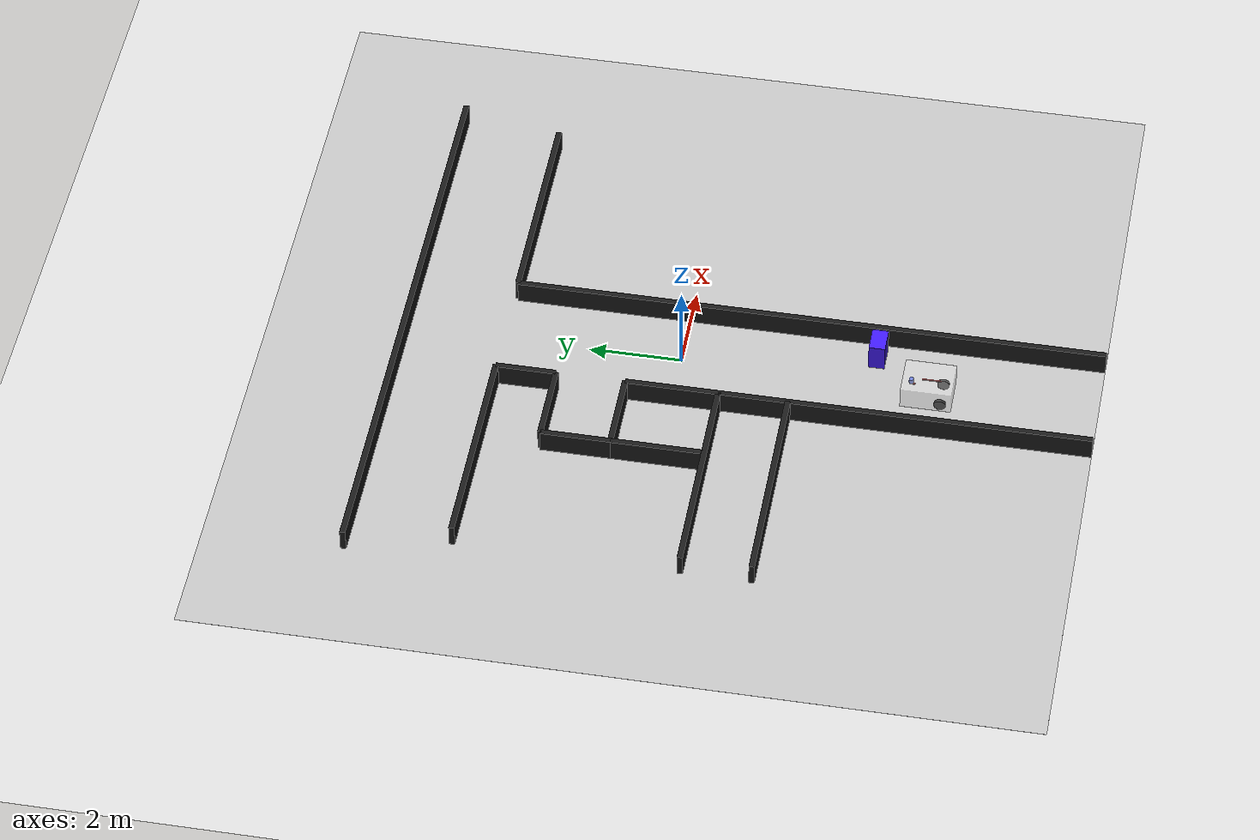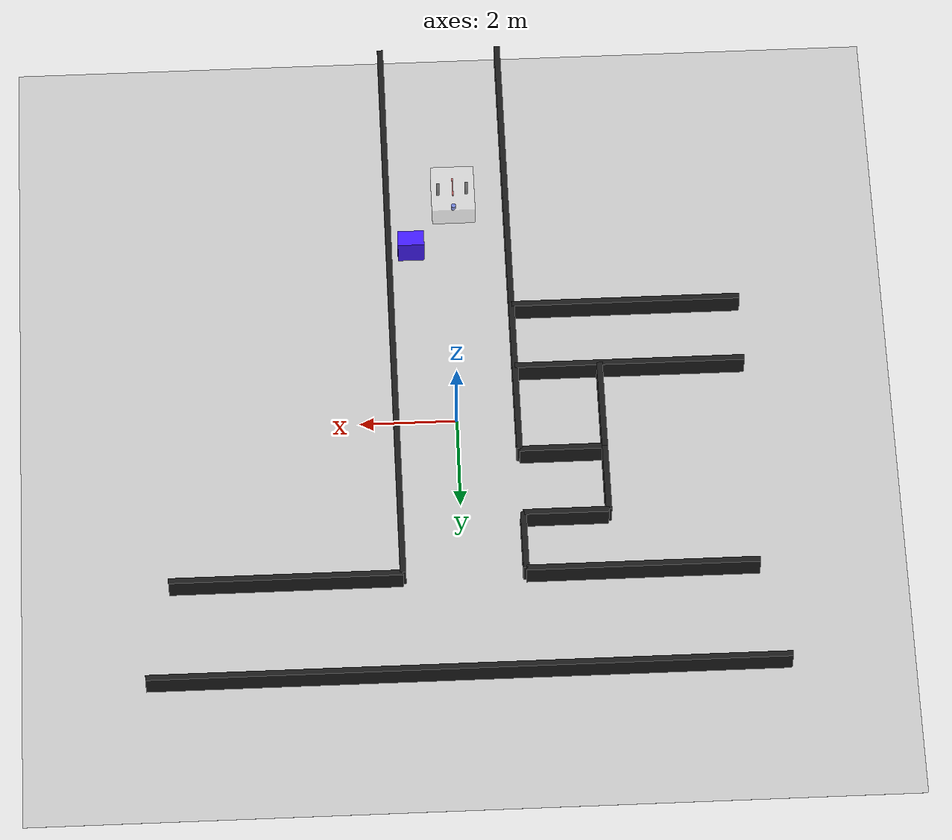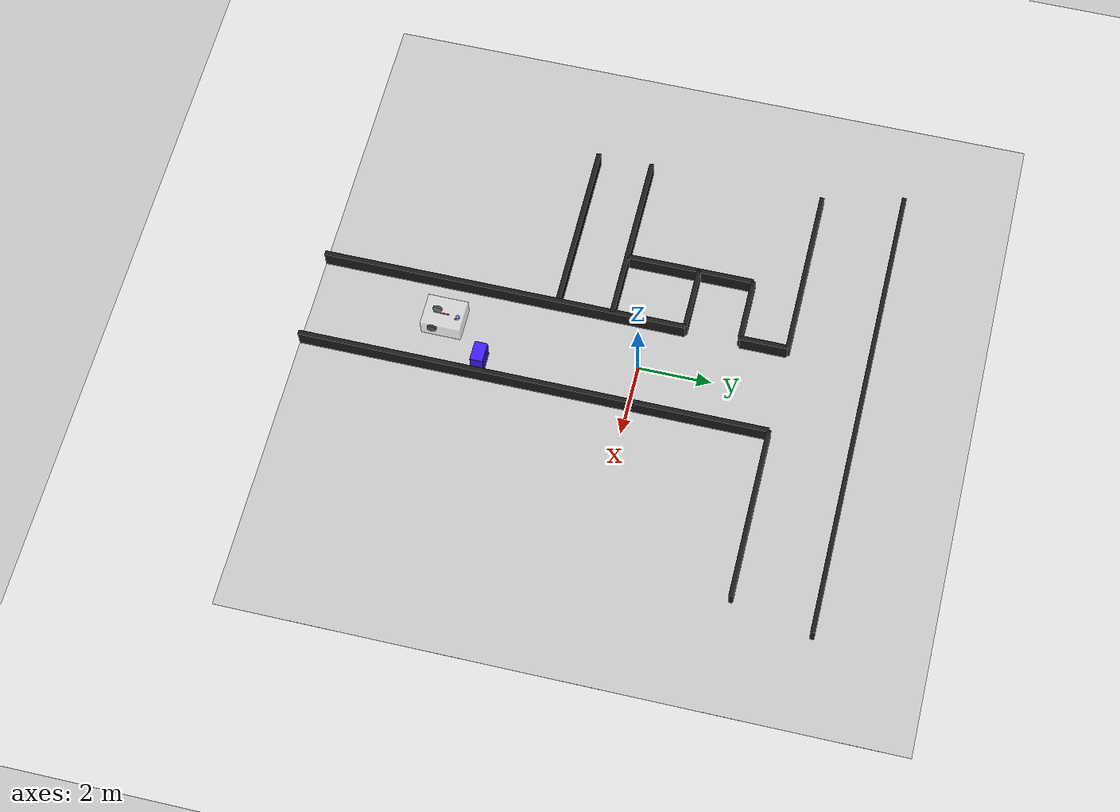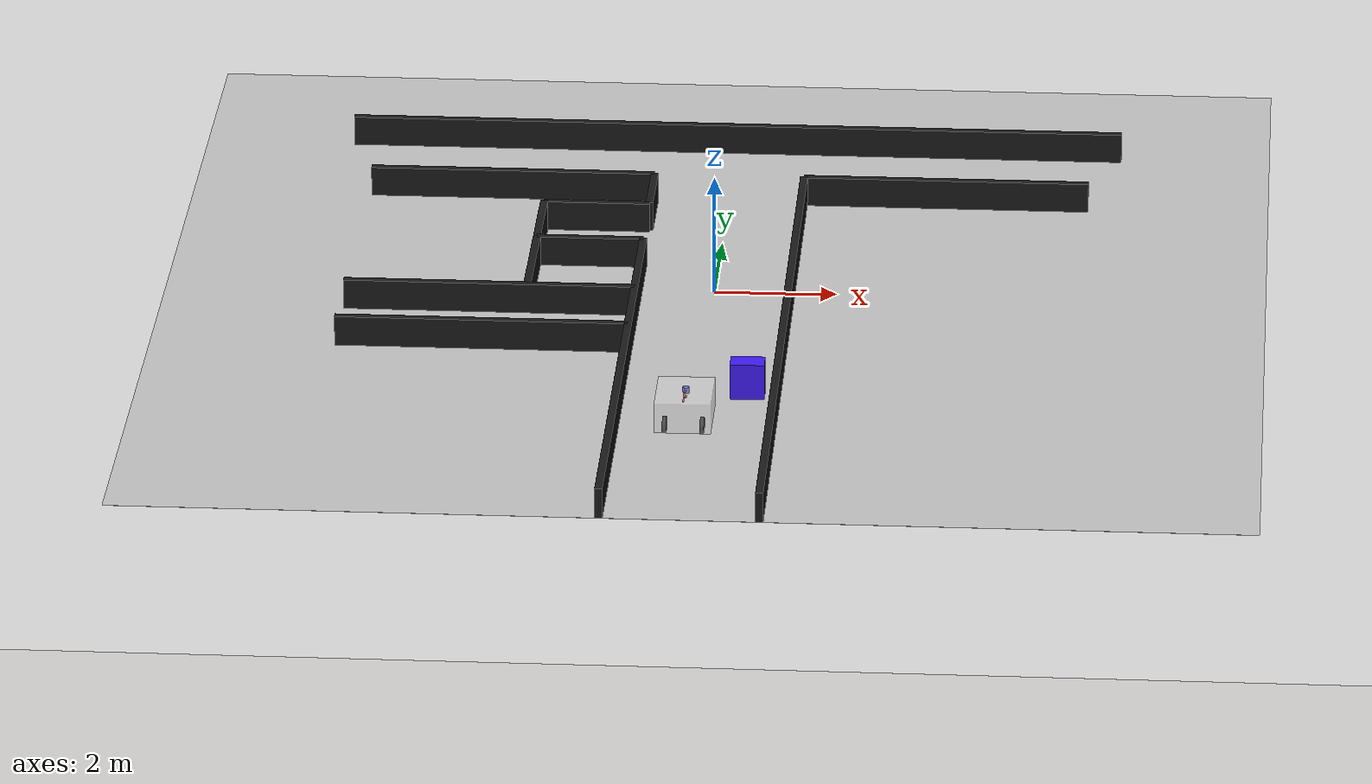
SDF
<?xml version="1.0" ?>
<sdf version="1.7">
  <world name="office_corridor_sketch">
    <plugin
      filename="libignition-gazebo-physics-system.so"
      name="ignition::gazebo::systems::Physics"/>
    <plugin
      filename="libignition-gazebo-user-commands-system.so"
      name="ignition::gazebo::systems::UserCommands"/>
    <plugin
      filename="libignition-gazebo-scene-broadcaster-system.so"
      name="ignition::gazebo::systems::SceneBroadcaster"/>
    <plugin
      filename="libignition-gazebo-sensors-system.so"
      name="ignition::gazebo::systems::Sensors">
      <render_engine>ogre2</render_engine>
    </plugin>

    <gravity>0 0 -9.81</gravity>
    <magnetic_field>6e-06 2.3e-05 -4.2e-05</magnetic_field>
    <atmosphere type="adiabatic"/>

    <light name="sun" type="directional">
      <cast_shadows>true</cast_shadows>
      <pose>0 0 10 0 0 0</pose>
      <diffuse>0.8 0.8 0.8 1</diffuse>
      <specular>0.2 0.2 0.2 1</specular>
      <attenuation>
        <range>1000</range>
        <constant>0.9</constant>
        <linear>0.01</linear>
        <quadratic>0.001</quadratic>
      </attenuation>
      <direction>-0.5 0.1 -0.9</direction>
    </light>

    <model name="ground_plane">
      <static>true</static>
      <link name="link">
        <collision name="collision">
          <geometry>
            <plane>
              <normal>0 0 1</normal>
              <size>100 100</size>
            </plane>
          </geometry>
        </collision>
        <visual name="visual">
          <geometry>
            <plane>
              <normal>0 0 1</normal>
              <size>100 100</size>
            </plane>
          </geometry>
          <material>
            <ambient>0.85 0.85 0.85 1</ambient>
            <diffuse>0.85 0.85 0.85 1</diffuse>
          </material>
        </visual>
      </link>
    </model>

    <!-- Light-gray floor patch so the scene resembles your sketch background. -->
    <model name="floor_patch">
      <static>true</static>
      <pose>0 0 0.001 0 0 0</pose>
      <link name="link">
        <collision name="collision">
          <geometry>
            <box>
              <size>18 18 0.002</size>
            </box>
          </geometry>
        </collision>
        <visual name="visual">
          <geometry>
            <box>
              <size>18 18 0.002</size>
            </box>
          </geometry>
          <material>
            <ambient>0.75 0.75 0.75 1</ambient>
            <diffuse>0.75 0.75 0.75 1</diffuse>
          </material>
        </visual>
      </link>
    </model>

    <!-- Wall helper style: thickness=0.12m, height=0.5m. -->

    <model name="wall_top_border">
      <static>true</static>
      <pose>0 6.0 0.25 0 0 0</pose>
      <link name="link">
        <collision name="collision"><geometry><box><size>13.0 0.12 0.5</size></box></geometry></collision>
        <visual name="visual"><geometry><box><size>13.0 0.12 0.5</size></box></geometry><material><ambient>0.1 0.1 0.1 1</ambient><diffuse>0.1 0.1 0.1 1</diffuse></material></visual>
      </link>
    </model>

    <model name="wall_upper_left">
      <static>true</static>
      <pose>-3.625 3.8 0.25 0 0 0</pose>
      <link name="link">
        <collision name="collision"><geometry><box><size>4.75 0.12 0.5</size></box></geometry></collision>
        <visual name="visual"><geometry><box><size>4.75 0.12 0.5</size></box></geometry><material><ambient>0.1 0.1 0.1 1</ambient><diffuse>0.1 0.1 0.1 1</diffuse></material></visual>
      </link>
    </model>

    <model name="wall_upper_right">
      <static>true</static>
      <pose>3.625 3.8 0.25 0 0 0</pose>
      <link name="link">
        <collision name="collision"><geometry><box><size>4.75 0.12 0.5</size></box></geometry></collision>
        <visual name="visual"><geometry><box><size>4.75 0.12 0.5</size></box></geometry><material><ambient>0.1 0.1 0.1 1</ambient><diffuse>0.1 0.1 0.1 1</diffuse></material></visual>
      </link>
    </model>

    <model name="wall_main_right">
      <static>true</static>
      <pose>1.25 -2.6 0.25 0 0 0</pose>
      <link name="link">
        <collision name="collision"><geometry><box><size>0.12 12.8 0.5</size></box></geometry></collision>
        <visual name="visual"><geometry><box><size>0.12 12.8 0.5</size></box></geometry><material><ambient>0.1 0.1 0.1 1</ambient><diffuse>0.1 0.1 0.1 1</diffuse></material></visual>
      </link>
    </model>

    <model name="wall_main_left_bottom">
      <static>true</static>
      <pose>-1.25 -4.0 0.25 0 0 0</pose>
      <link name="link">
        <collision name="collision"><geometry><box><size>0.12 10.0 0.5</size></box></geometry></collision>
        <visual name="visual"><geometry><box><size>0.12 10.0 0.5</size></box></geometry><material><ambient>0.1 0.1 0.1 1</ambient><diffuse>0.1 0.1 0.1 1</diffuse></material></visual>
      </link>
    </model>

    <model name="wall_left_step_h1">
      <static>true</static>
      <pose>-2.125 1.0 0.25 0 0 0</pose>
      <link name="link">
        <collision name="collision"><geometry><box><size>1.75 0.12 0.5</size></box></geometry></collision>
        <visual name="visual"><geometry><box><size>1.75 0.12 0.5</size></box></geometry><material><ambient>0.1 0.1 0.1 1</ambient><diffuse>0.1 0.1 0.1 1</diffuse></material></visual>
      </link>
    </model>

    <model name="wall_left_step_v1">
      <static>true</static>
      <pose>-3.0 1.75 0.25 0 0 0</pose>
      <link name="link">
        <collision name="collision"><geometry><box><size>0.12 1.5 0.5</size></box></geometry></collision>
        <visual name="visual"><geometry><box><size>0.12 1.5 0.5</size></box></geometry><material><ambient>0.1 0.1 0.1 1</ambient><diffuse>0.1 0.1 0.1 1</diffuse></material></visual>
      </link>
    </model>

    <model name="wall_left_step_v2">
      <static>true</static>
      <pose>-3.0 0.0 0.25 0 0 0</pose>
      <link name="link">
        <collision name="collision"><geometry><box><size>0.12 2.0 0.5</size></box></geometry></collision>
        <visual name="visual"><geometry><box><size>0.12 2.0 0.5</size></box></geometry><material><ambient>0.1 0.1 0.1 1</ambient><diffuse>0.1 0.1 0.1 1</diffuse></material></visual>
      </link>
    </model>

    <model name="wall_left_step_h2">
      <static>true</static>
      <pose>-2.125 2.5 0.25 0 0 0</pose>
      <link name="link">
        <collision name="collision"><geometry><box><size>1.75 0.12 0.5</size></box></geometry></collision>
        <visual name="visual"><geometry><box><size>1.75 0.12 0.5</size></box></geometry><material><ambient>0.1 0.1 0.1 1</ambient><diffuse>0.1 0.1 0.1 1</diffuse></material></visual>
      </link>
    </model>

    <model name="wall_main_left_top">
      <static>true</static>
      <pose>-1.25 3.15 0.25 0 0 0</pose>
      <link name="link">
        <collision name="collision"><geometry><box><size>0.12 1.3 0.5</size></box></geometry></collision>
        <visual name="visual"><geometry><box><size>0.12 1.3 0.5</size></box></geometry><material><ambient>0.1 0.1 0.1 1</ambient><diffuse>0.1 0.1 0.1 1</diffuse></material></visual>
      </link>
    </model>

    <model name="wall_left_mid_horizontal">
      <static>true</static>
      <pose>-3.625 -1.0 0.25 0 0 0</pose>
      <link name="link">
        <collision name="collision"><geometry><box><size>4.75 0.12 0.5</size></box></geometry></collision>
        <visual name="visual"><geometry><box><size>4.75 0.12 0.5</size></box></geometry><material><ambient>0.1 0.1 0.1 1</ambient><diffuse>0.1 0.1 0.1 1</diffuse></material></visual>
      </link>
    </model>

    <model name="wall_left_low_horizontal">
      <static>true</static>
      <pose>-3.625 -2.5 0.25 0 0 0</pose>
      <link name="link">
        <collision name="collision"><geometry><box><size>4.75 0.12 0.5</size></box></geometry></collision>
        <visual name="visual"><geometry><box><size>4.75 0.12 0.5</size></box></geometry><material><ambient>0.1 0.1 0.1 1</ambient><diffuse>0.1 0.1 0.1 1</diffuse></material></visual>
      </link>
    </model>

    <!-- Blue obstacle from your sketch. -->
    <model name="obstacle_blue_box">
      <static>true</static>
      <pose>0.78 -4.15 0.3 0 0 0</pose>
      <link name="link">
        <collision name="collision">
          <geometry>
            <box>
              <size>0.55 0.35 0.6</size>
            </box>
          </geometry>
        </collision>
        <visual name="visual">
          <geometry>
            <box>
              <size>0.55 0.35 0.6</size>
            </box>
          </geometry>
          <material>
            <ambient>0.25 0.1 0.95 1</ambient>
            <diffuse>0.25 0.1 0.95 1</diffuse>
          </material>
        </visual>
      </link>
    </model>

    <!-- Start marker near the corridor bottom center, facing +Y. -->

    <include>
      <name>finav_vehicle</name>
      <pose>-0.15 -5.65 0 0 0 1.5707963</pose>
      <uri>model://whillcar</uri>
    </include>

  </world>
</sdf>

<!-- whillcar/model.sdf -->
<sdf version="1.7">
  <model name="whillcar">
    <self_collide>false</self_collide>

    <link name="base_link">
      <gravity>false</gravity>
      <pose>0.295 0 0.25 0 0 0</pose>
      <inertial>
        <pose>0 0 0 0 0 0</pose>
        <mass>40.0</mass>
        <inertia>
          <ixx>3.5333333333</ixx>
          <ixy>0.0</ixy>
          <ixz>0.0</ixz>
          <iyy>4.7936666667</iyy>
          <iyz>0.0</iyz>
          <izz>6.6603333333</izz>
        </inertia>
      </inertial>
      <collision name="base_collision">
        <geometry>
          <box>
            <size>1.09 0.90 0.5</size>
          </box>
        </geometry>
      </collision>
      <visual name="base_visual">
        <pose>0 0 0.09 0 0 0</pose>
        <geometry>
          <box>
            <size>1.09 0.90 0.5</size>
          </box>
        </geometry>
        <material>
          <ambient>0.9 0.9 0.9 0.35</ambient>
          <diffuse>0.9 0.9 0.9 0.35</diffuse>
        </material>
      </visual>
    </link>

    <link name="left_wheel_link">
      <gravity>false</gravity>
      <pose>0 0.30 0.127 1.57079632679 0 0</pose>
      <inertial>
        <mass>2.0</mass>
        <inertia>
          <ixx>0.016129</ixx>
          <ixy>0.0</ixy>
          <ixz>0.0</ixz>
          <iyy>0.0086645</iyy>
          <iyz>0.0</iyz>
          <izz>0.0086645</izz>
        </inertia>
      </inertial>
      <collision name="left_wheel_collision">
        <geometry>
          <cylinder>
            <radius>0.127</radius>
            <length>0.06</length>
          </cylinder>
        </geometry>
      </collision>
      <visual name="left_wheel_visual">
        <geometry>
          <cylinder>
            <radius>0.127</radius>
            <length>0.06</length>
          </cylinder>
        </geometry>
        <material>
          <ambient>0.1 0.1 0.1 1.0</ambient>
          <diffuse>0.1 0.1 0.1 1.0</diffuse>
        </material>
      </visual>
    </link>

    <link name="right_wheel_link">
      <gravity>false</gravity>
      <pose>0 -0.30 0.127 1.57079632679 0 0</pose>
      <inertial>
        <mass>2.0</mass>
        <inertia>
          <ixx>0.016129</ixx>
          <ixy>0.0</ixy>
          <ixz>0.0</ixz>
          <iyy>0.0086645</iyy>
          <iyz>0.0</iyz>
          <izz>0.0086645</izz>
        </inertia>
      </inertial>
      <collision name="right_wheel_collision">
        <geometry>
          <cylinder>
            <radius>0.127</radius>
            <length>0.06</length>
          </cylinder>
        </geometry>
      </collision>
      <visual name="right_wheel_visual">
        <geometry>
          <cylinder>
            <radius>0.127</radius>
            <length>0.06</length>
          </cylinder>
        </geometry>
        <material>
          <ambient>0.1 0.1 0.1 1.0</ambient>
          <diffuse>0.1 0.1 0.1 1.0</diffuse>
        </material>
      </visual>
    </link>

    <joint name="left_wheel_joint" type="fixed">
      <parent>base_link</parent>
      <child>left_wheel_link</child>
    </joint>

    <joint name="right_wheel_joint" type="fixed">
      <parent>base_link</parent>
      <child>right_wheel_link</child>
    </joint>

    <link name="imu_link">
      <gravity>false</gravity>
      <pose>0.59 0 0.35 0 0 3.1415926</pose>
      <visual name="imu_visual">
        <geometry>
          <box>
            <size>0.05 0.03 0.02</size>
          </box>
        </geometry>
        <material>
          <ambient>0.85 0.2 0.2 1.0</ambient>
          <diffuse>0.85 0.2 0.2 1.0</diffuse>
        </material>
      </visual>
      <sensor name="imu_sensor" type="imu">
        <always_on>true</always_on>
        <update_rate>100.0</update_rate>
        <topic>imu</topic>
        <enable_metrics>true</enable_metrics>
      </sensor>
    </link>

    <joint name="imu_joint" type="fixed">
      <parent>base_link</parent>
      <child>imu_link</child>
    </joint>

    <link name="laser_frame">
      <gravity>false</gravity>
      <pose>0.66 0 0.44 0 0 -1.5707963</pose>
      <inertial>
        <mass>0.6</mass>
        <inertia>
          <ixx>0.000875</ixx>
          <ixy>0.0</ixy>
          <ixz>0.0</ixz>
          <iyy>0.000875</iyy>
          <iyz>0.0</iyz>
          <izz>0.00075</izz>
        </inertia>
      </inertial>
      <collision name="laser_collision">
        <geometry>
          <cylinder>
            <radius>0.05</radius>
            <length>0.10</length>
          </cylinder>
        </geometry>
      </collision>
      <visual name="laser_visual">
        <geometry>
          <cylinder>
            <radius>0.05</radius>
            <length>0.10</length>
          </cylinder>
        </geometry>
        <material>
          <ambient>0.2 0.3 0.8 1.0</ambient>
          <diffuse>0.2 0.3 0.8 1.0</diffuse>
        </material>
      </visual>
      <sensor name="laser_sensor" type="gpu_lidar">
        <always_on>true</always_on>
        <visualize>true</visualize>
        <update_rate>10.0</update_rate>
        <topic>scan</topic>
        <enable_metrics>true</enable_metrics>
        <lidar>
          <scan>
            <horizontal>
              <samples>2700</samples>
              <resolution>1</resolution>
              <min_angle>-0.7853982</min_angle>
              <max_angle>3.9269908</max_angle>
            </horizontal>
          </scan>
          <range>
            <min>0.05</min>
            <max>25.0</max>
            <resolution>0.01</resolution>
          </range>
        </lidar>
      </sensor>
    </link>

    <joint name="laser_joint" type="fixed">
      <parent>base_link</parent>
      <child>laser_frame</child>
    </joint>

    <link name="front_indicator_link">
      <gravity>false</gravity>
      <pose>0 0 0.52 0 0 0</pose>
      <visual name="front_indicator_visual">
        <pose>0.218 0 0 0 0 0</pose>
        <geometry>
          <box>
            <size>0.436 0.02 0.02</size>
          </box>
        </geometry>
        <material>
          <ambient>0.85 0.2 0.2 1.0</ambient>
          <diffuse>0.85 0.2 0.2 1.0</diffuse>
        </material>
      </visual>
    </link>

    <joint name="front_indicator_joint" type="fixed">
      <parent>base_link</parent>
      <child>front_indicator_link</child>
    </joint>

    <plugin
      filename="ignition-gazebo-pose-publisher-system"
      name="gz::sim::systems::PosePublisher">
      <publish_link_pose>true</publish_link_pose>
      <use_pose_vector_msg>true</use_pose_vector_msg>
      <static_publisher>true</static_publisher>
      <static_update_frequency>1.0</static_update_frequency>
    </plugin>
  </model>
</sdf>
